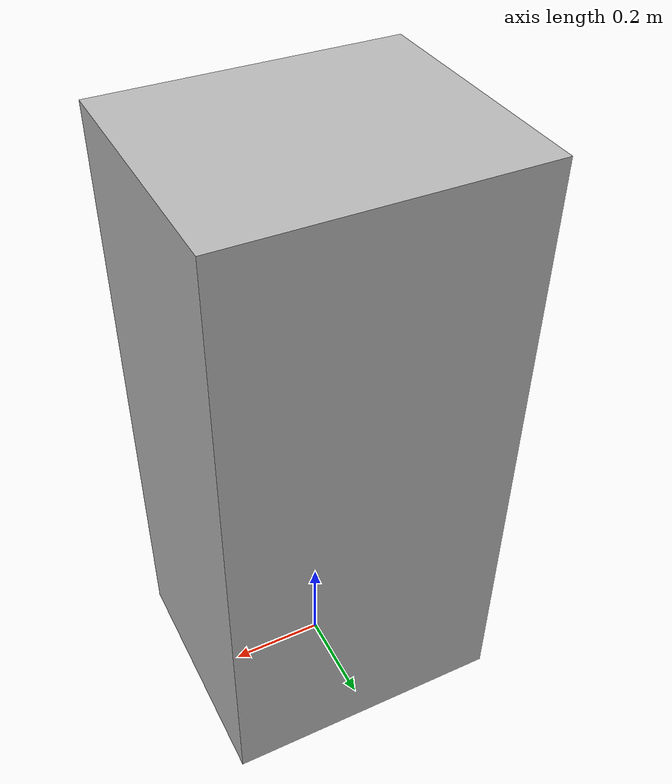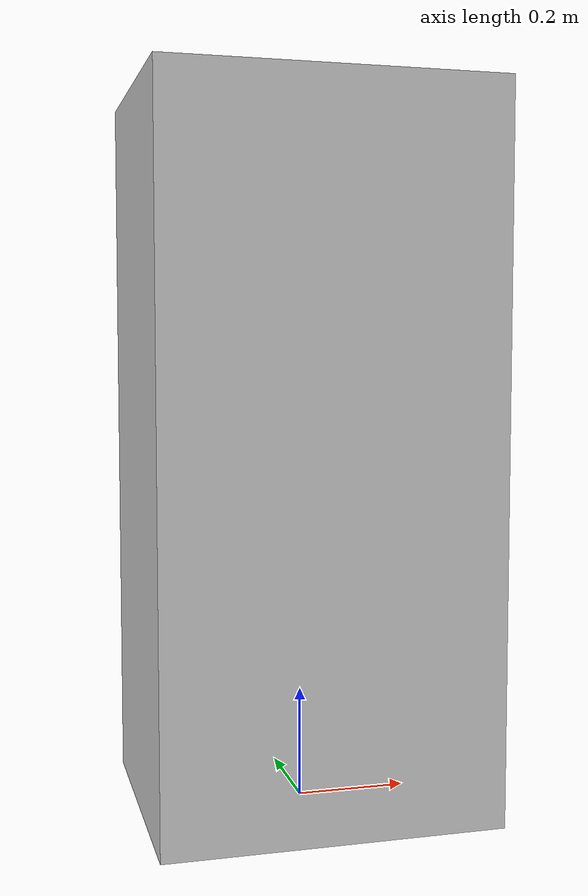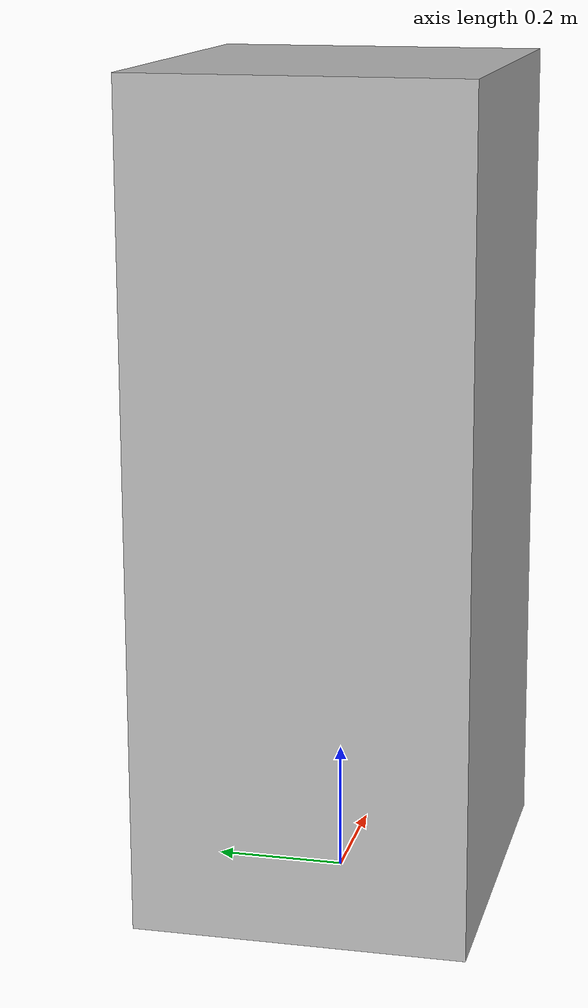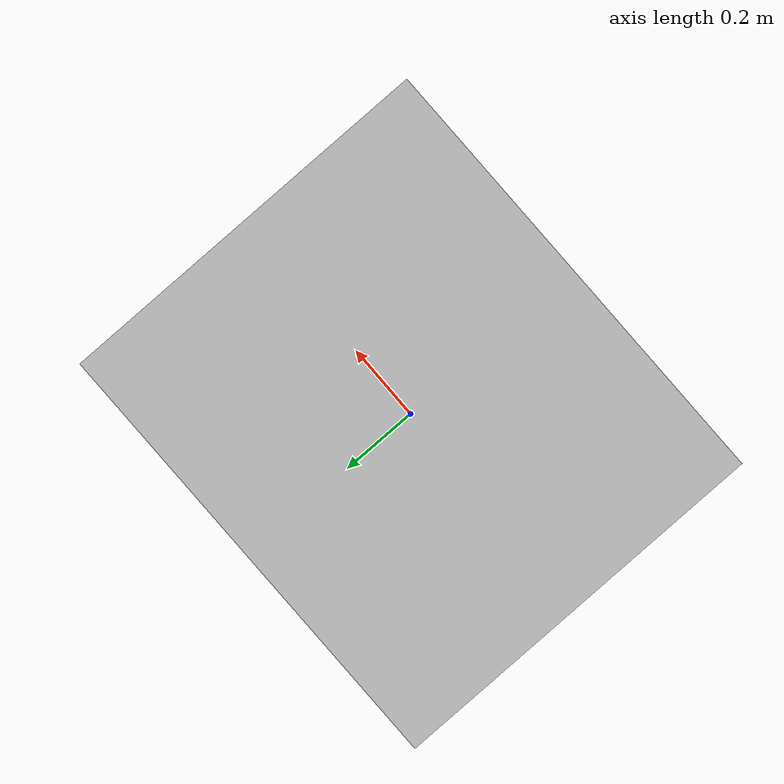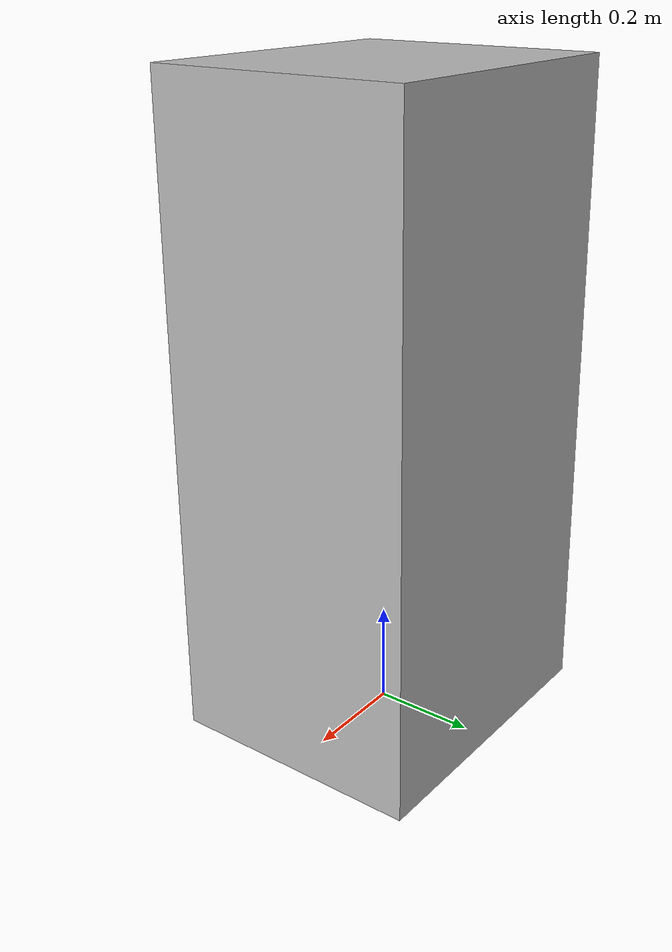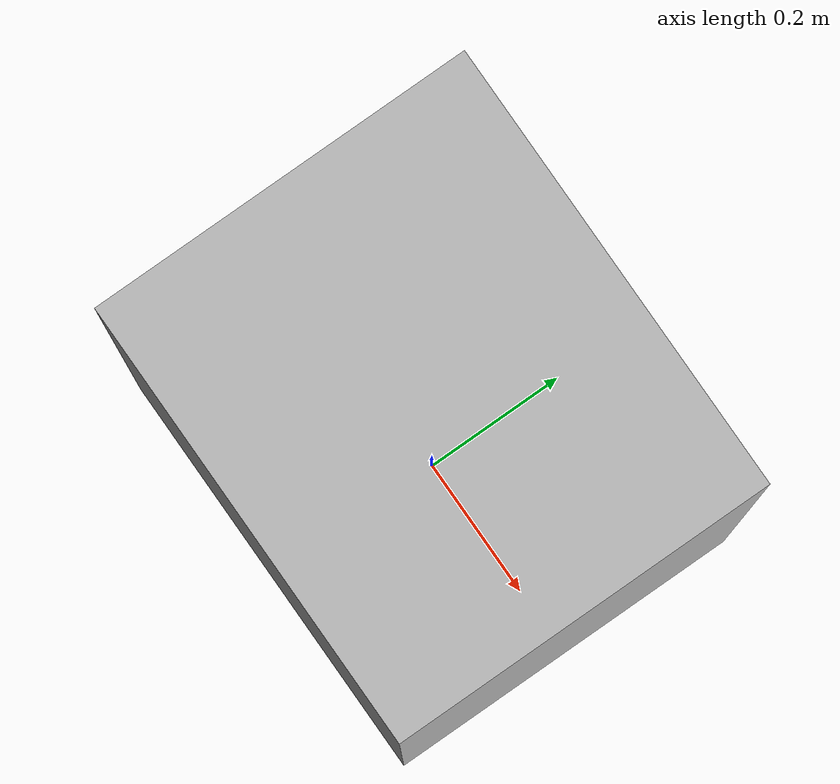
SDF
<?xml version="1.0"?>
<sdf version="1.6">
  <model name="rwc2017/fridge">
    <link name="1_link">
      <collision name="1_col">
        <geometry>
          <box>
            <size>0.6 0.51 1.28</size>
          </box>
        </geometry>
      </collision>
      <visual name="1_vis">
        <geometry>
          <box>
            <size>0.6 0.51 1.28</size>
          </box>
        </geometry>
      </visual>
      <pose>0.0 0.0 0.64 0 0 0</pose>
    </link>
    <link name="on_top_of">
      <virtual_volume name="on_top_of_vv">
        <geometry>
          <box>
            <size>0.56 0.46 0.45</size>
          </box>
        </geometry>
        <pose>0.0 0.0 1.525 0 0 0</pose>
      </virtual_volume>
    </link>
    <link name="in_front_of">
      <virtual_volume name="in_front_of_vv">
        <geometry>
          <box>
            <size>0.3 0.4 0.01</size>
          </box>
        </geometry>
        <pose>0.65 0.0 0.005 0 0 0</pose>
      </virtual_volume>
    </link>
    <static>true</static>
  </model>
</sdf>
